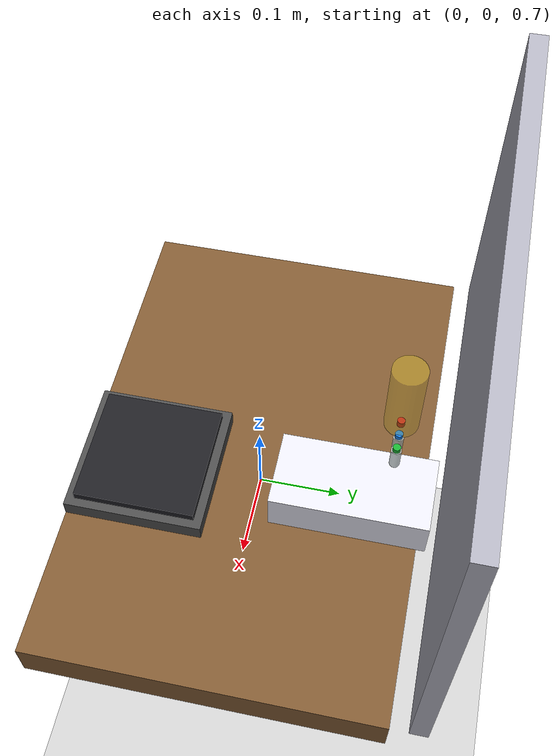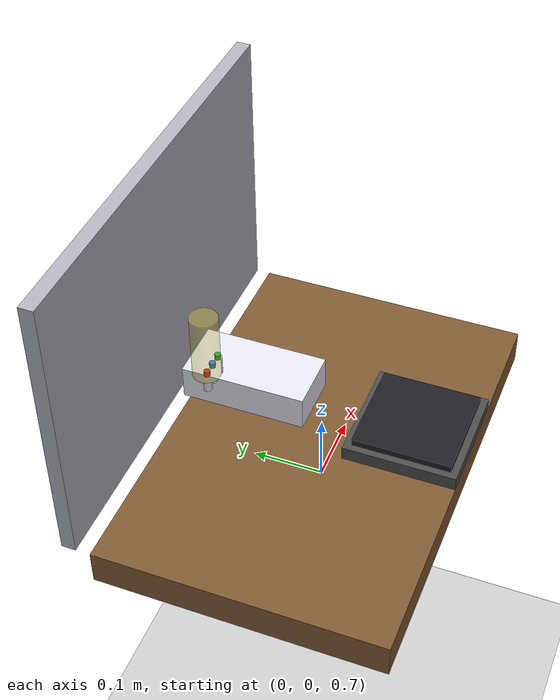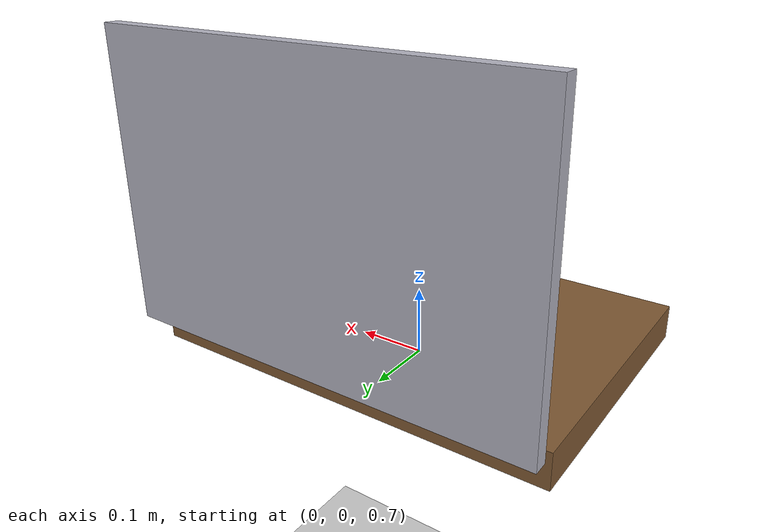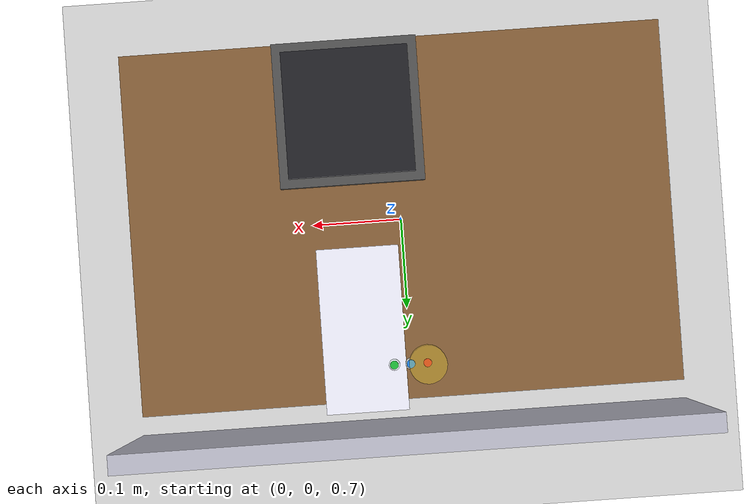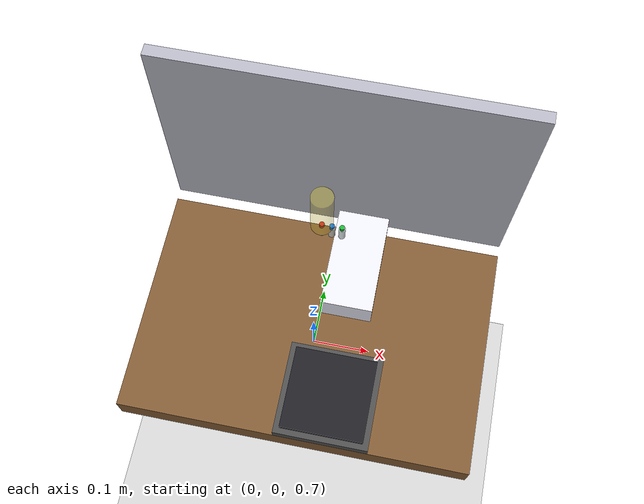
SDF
<sdf version="1.7">
 <world name="autosampler_cell_v2">
  <include><uri>model://sun</uri></include>
  <include><uri>model://ground_plane</uri></include>
  <model name="bench">
   <static>true</static>
   <pose>0 0 0.75 0 0 0</pose>
   <link name="top">
    <visual name="v">
     <geometry><box><size>0.6 0.4 0.05</size></box></geometry>
     <material><ambient>0.5 0.35 0.2 1</ambient><diffuse>0.5 0.35 0.2 1</diffuse></material>
    </visual>
    <collision name="c"><geometry><box><size>0.6 0.4 0.05</size></box></geometry></collision>
   </link>
  </model>
  <model name="source_rack">
   <static>true</static>
   <pose>0.05 0.12 0.80 0 0 0</pose>
   <link name="body">
    <visual name="v">
     <geometry><box><size>0.09 0.18 0.05</size></box></geometry>
     <material><ambient>0.9 0.9 0.95 1</ambient><diffuse>0.9 0.9 0.95 1</diffuse></material>
    </visual>
    <collision name="c"><geometry><box><size>0.09 0.18 0.05</size></box></geometry></collision>
   </link>
  </model>
  <model name="tray_alignment_plate">
   <static>true</static>
   <pose>0.05 -0.12 0.785 0 0 0</pose>
   <link name="body">
    <visual name="v">
     <geometry><box><size>0.16 0.16 0.02</size></box></geometry>
     <material><ambient>0.3 0.3 0.3 1</ambient><diffuse>0.3 0.3 0.3 1</diffuse></material>
    </visual>
    <collision name="c"><geometry><box><size>0.16 0.16 0.02</size></box></geometry></collision>
   </link>
  </model>
  <model name="autosampler_tray">
   <static>true</static>
   <pose>0.05 -0.12 0.80 0 0 0</pose>
   <link name="body">
    <visual name="v">
     <geometry><box><size>0.14 0.14 0.01</size></box></geometry>
     <material><ambient>0.12 0.12 0.14 1</ambient><diffuse>0.12 0.12 0.14 1</diffuse></material>
    </visual>
    <collision name="c"><geometry><box><size>0.14 0.14 0.01</size></box></geometry></collision>
   </link>
  </model>
  <model name="vial_a1">
   <pose>-0.018 0.160 0.841 0 0 0</pose>
   <link name="link">
    <inertial>
     <mass>0.008</mass>
     <inertia><ixx>1.0e-6</ixx><iyy>1.0e-6</iyy><izz>0.5e-6</izz><ixy>0</ixy><ixz>0</ixz><iyz>0</iyz></inertia>
    </inertial>
    <visual name="body">
     <pose>0 0 -0.002 0 0 0</pose>
     <geometry><cylinder><radius>0.006</radius><length>0.028</length></cylinder></geometry>
     <material><ambient>0.85 0.9 0.9 0.8</ambient><diffuse>0.85 0.9 0.9 0.8</diffuse></material>
    </visual>
    <visual name="cap">
     <pose>0 0 0.014 0 0 0</pose>
     <geometry><cylinder><radius>0.0045</radius><length>0.008</length></cylinder></geometry>
     <material><ambient>0.8 0.1 0.1 1</ambient><diffuse>0.8 0.1 0.1 1</diffuse></material>
    </visual>
    <collision name="c">
     <geometry><cylinder><radius>0.006</radius><length>0.032</length></cylinder></geometry>
    </collision>
   </link>
  </model>
  <model name="vial_a3">
   <pose>0.000 0.160 0.841 0 0 0</pose>
   <link name="link">
    <inertial>
     <mass>0.008</mass>
     <inertia><ixx>1.0e-6</ixx><iyy>1.0e-6</iyy><izz>0.5e-6</izz><ixy>0</ixy><ixz>0</ixz><iyz>0</iyz></inertia>
    </inertial>
    <visual name="body">
     <pose>0 0 -0.002 0 0 0</pose>
     <geometry><cylinder><radius>0.006</radius><length>0.028</length></cylinder></geometry>
     <material><ambient>0.85 0.9 0.9 0.8</ambient><diffuse>0.85 0.9 0.9 0.8</diffuse></material>
    </visual>
    <visual name="cap">
     <pose>0 0 0.014 0 0 0</pose>
     <geometry><cylinder><radius>0.0045</radius><length>0.008</length></cylinder></geometry>
     <material><ambient>0.1 0.5 0.9 1</ambient><diffuse>0.1 0.5 0.9 1</diffuse></material>
    </visual>
    <collision name="c">
     <geometry><cylinder><radius>0.006</radius><length>0.032</length></cylinder></geometry>
    </collision>
   </link>
  </model>
  <model name="vial_a5">
   <pose>0.018 0.160 0.841 0 0 0</pose>
   <link name="link">
    <inertial>
     <mass>0.008</mass>
     <inertia><ixx>1.0e-6</ixx><iyy>1.0e-6</iyy><izz>0.5e-6</izz><ixy>0</ixy><ixz>0</ixz><iyz>0</iyz></inertia>
    </inertial>
    <visual name="body">
     <pose>0 0 -0.002 0 0 0</pose>
     <geometry><cylinder><radius>0.006</radius><length>0.028</length></cylinder></geometry>
     <material><ambient>0.85 0.9 0.9 0.8</ambient><diffuse>0.85 0.9 0.9 0.8</diffuse></material>
    </visual>
    <visual name="cap">
     <pose>0 0 0.014 0 0 0</pose>
     <geometry><cylinder><radius>0.0045</radius><length>0.008</length></cylinder></geometry>
     <material><ambient>0.1 0.7 0.2 1</ambient><diffuse>0.1 0.7 0.2 1</diffuse></material>
    </visual>
    <collision name="c">
     <geometry><cylinder><radius>0.006</radius><length>0.032</length></cylinder></geometry>
    </collision>
   </link>
  </model>
  <model name="autosampler_housing_back_wall">
   <static>true</static>
   <pose>0 0.23 0.975 0 0 0</pose>
   <link name="body">
    <visual name="v">
     <geometry><box><size>0.6 0.02 0.4</size></box></geometry>
     <material><ambient>0.7 0.7 0.75 1</ambient><diffuse>0.7 0.7 0.75 1</diffuse></material>
    </visual>
    <collision name="c"><geometry><box><size>0.6 0.02 0.4</size></box></geometry></collision>
   </link>
  </model>
  <model name="no_fly_a1_marker">
   <static>true</static>
   <pose>-0.018 0.160 0.905 0 0 0</pose>
   <link name="body">
    <visual name="v">
     <geometry><cylinder><radius>0.02</radius><length>0.10</length></cylinder></geometry>
     <material><ambient>0.95 0.85 0.1 0.3</ambient><diffuse>0.95 0.85 0.1 0.3</diffuse></material>
    </visual>
   </link>
  </model>
 </world>
</sdf>
